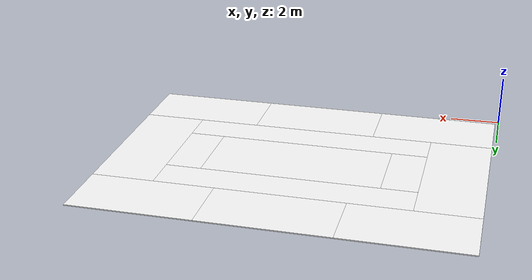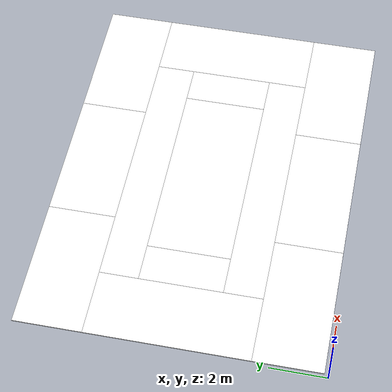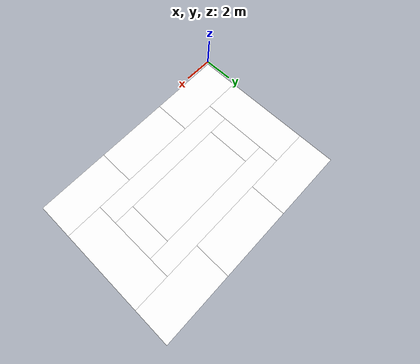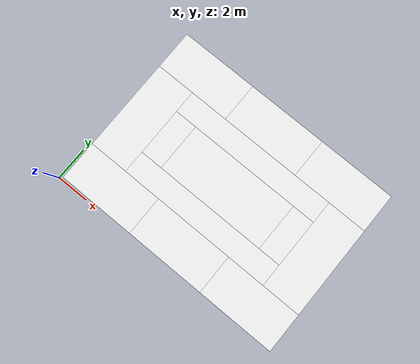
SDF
<sdf version="1.10">
 <world name="hexapod_facility">
  <model name="ground">
   <static>true</static>
   <link name="plane">
    <visual name="vis">
     <geometry><plane><normal>0 0 1</normal><size>60 60</size></plane></geometry>
     <material><diffuse>0.55 0.56 0.58 1</diffuse></material>
    </visual>
   </link>
  </model>
  <model name="floors">
   <static>true</static>
   <link name="slabs">
    <collision name="floor_ring_0_col">
     <pose>7.500 3.300 -0.02 0 0 0</pose>
     <geometry><box><size>9.800 1.400 0.04</size></box></geometry>
     <surface><friction><ode><mu>1.0</mu><mu2>1.0</mu2></ode></friction></surface>
    </collision>
    <visual name="floor_ring_0_vis">
     <pose>7.500 3.300 -0.02 0 0 0</pose>
     <geometry><box><size>9.800 1.400 0.04</size></box></geometry>
     <material>
      <diffuse>1 1 1 1</diffuse>
      <specular>0.15 0.15 0.15 1</specular>
      <pbr>
       <metal>
        <albedo_map>model://slam_assets/materials/textures/floor_lane.png</albedo_map>
        <roughness>0.85</roughness>
        <metalness>0.0</metalness>
       </metal>
      </pbr>
     </material>
    </visual>
    <collision name="floor_ring_1_col">
     <pose>7.500 7.700 -0.02 0 0 0</pose>
     <geometry><box><size>9.800 1.400 0.04</size></box></geometry>
     <surface><friction><ode><mu>1.0</mu><mu2>1.0</mu2></ode></friction></surface>
    </collision>
    <visual name="floor_ring_1_vis">
     <pose>7.500 7.700 -0.02 0 0 0</pose>
     <geometry><box><size>9.800 1.400 0.04</size></box></geometry>
     <material>
      <diffuse>1 1 1 1</diffuse>
      <specular>0.15 0.15 0.15 1</specular>
      <pbr>
       <metal>
        <albedo_map>model://slam_assets/materials/textures/floor_lane.png</albedo_map>
        <roughness>0.85</roughness>
        <metalness>0.0</metalness>
       </metal>
      </pbr>
     </material>
    </visual>
    <collision name="floor_ring_2_col">
     <pose>3.300 5.500 -0.02 0 0 0</pose>
     <geometry><box><size>1.400 3.000 0.04</size></box></geometry>
     <surface><friction><ode><mu>1.0</mu><mu2>1.0</mu2></ode></friction></surface>
    </collision>
    <visual name="floor_ring_2_vis">
     <pose>3.300 5.500 -0.02 0 0 0</pose>
     <geometry><box><size>1.400 3.000 0.04</size></box></geometry>
     <material>
      <diffuse>1 1 1 1</diffuse>
      <specular>0.15 0.15 0.15 1</specular>
      <pbr>
       <metal>
        <albedo_map>model://slam_assets/materials/textures/floor_lane.png</albedo_map>
        <roughness>0.85</roughness>
        <metalness>0.0</metalness>
       </metal>
      </pbr>
     </material>
    </visual>
    <collision name="floor_ring_3_col">
     <pose>11.700 5.500 -0.02 0 0 0</pose>
     <geometry><box><size>1.400 3.000 0.04</size></box></geometry>
     <surface><friction><ode><mu>1.0</mu><mu2>1.0</mu2></ode></friction></surface>
    </collision>
    <visual name="floor_ring_3_vis">
     <pose>11.700 5.500 -0.02 0 0 0</pose>
     <geometry><box><size>1.400 3.000 0.04</size></box></geometry>
     <material>
      <diffuse>1 1 1 1</diffuse>
      <specular>0.15 0.15 0.15 1</specular>
      <pbr>
       <metal>
        <albedo_map>model://slam_assets/materials/textures/floor_lane.png</albedo_map>
        <roughness>0.85</roughness>
        <metalness>0.0</metalness>
       </metal>
      </pbr>
     </material>
    </visual>
    <collision name="floor_core_4_col">
     <pose>7.500 5.500 -0.02 0 0 0</pose>
     <geometry><box><size>7.000 3.000 0.04</size></box></geometry>
     <surface><friction><ode><mu>1.0</mu><mu2>1.0</mu2></ode></friction></surface>
    </collision>
    <visual name="floor_core_4_vis">
     <pose>7.500 5.500 -0.02 0 0 0</pose>
     <geometry><box><size>7.000 3.000 0.04</size></box></geometry>
     <material>
      <diffuse>1 1 1 1</diffuse>
      <specular>0.15 0.15 0.15 1</specular>
      <pbr>
       <metal>
        <albedo_map>model://slam_assets/materials/textures/floor_checkerplate.png</albedo_map>
        <roughness>0.85</roughness>
        <metalness>0.0</metalness>
       </metal>
      </pbr>
     </material>
    </visual>
    <collision name="floor_lab_5_col">
     <pose>2.575 1.375 -0.02 0 0 0</pose>
     <geometry><box><size>4.850 2.450 0.04</size></box></geometry>
     <surface><friction><ode><mu>1.0</mu><mu2>1.0</mu2></ode></friction></surface>
    </collision>
    <visual name="floor_lab_5_vis">
     <pose>2.575 1.375 -0.02 0 0 0</pose>
     <geometry><box><size>4.850 2.450 0.04</size></box></geometry>
     <material>
      <diffuse>1 1 1 1</diffuse>
      <specular>0.15 0.15 0.15 1</specular>
      <pbr>
       <metal>
        <albedo_map>model://slam_assets/materials/textures/floor_esd.png</albedo_map>
        <roughness>0.85</roughness>
        <metalness>0.0</metalness>
       </metal>
      </pbr>
     </material>
    </visual>
    <collision name="floor_loading_6_col">
     <pose>7.500 1.375 -0.02 0 0 0</pose>
     <geometry><box><size>5.000 2.450 0.04</size></box></geometry>
     <surface><friction><ode><mu>1.0</mu><mu2>1.0</mu2></ode></friction></surface>
    </collision>
    <visual name="floor_loading_6_vis">
     <pose>7.500 1.375 -0.02 0 0 0</pose>
     <geometry><box><size>5.000 2.450 0.04</size></box></geometry>
     <material>
      <diffuse>1 1 1 1</diffuse>
      <specular>0.15 0.15 0.15 1</specular>
      <pbr>
       <metal>
        <albedo_map>model://slam_assets/materials/textures/floor_hazard.png</albedo_map>
        <roughness>0.85</roughness>
        <metalness>0.0</metalness>
       </metal>
      </pbr>
     </material>
    </visual>
    <collision name="floor_testing_7_col">
     <pose>12.425 1.375 -0.02 0 0 0</pose>
     <geometry><box><size>4.850 2.450 0.04</size></box></geometry>
     <surface><friction><ode><mu>1.0</mu><mu2>1.0</mu2></ode></friction></surface>
    </collision>
    <visual name="floor_testing_7_vis">
     <pose>12.425 1.375 -0.02 0 0 0</pose>
     <geometry><box><size>4.850 2.450 0.04</size></box></geometry>
     <material>
      <diffuse>1 1 1 1</diffuse>
      <specular>0.15 0.15 0.15 1</specular>
      <pbr>
       <metal>
        <albedo_map>model://slam_assets/materials/textures/floor_epoxy_green.png</albedo_map>
        <roughness>0.85</roughness>
        <metalness>0.0</metalness>
       </metal>
      </pbr>
     </material>
    </visual>
    <collision name="floor_storage_8_col">
     <pose>2.575 9.625 -0.02 0 0 0</pose>
     <geometry><box><size>4.850 2.450 0.04</size></box></geometry>
     <surface><friction><ode><mu>1.0</mu><mu2>1.0</mu2></ode></friction></surface>
    </collision>
    <visual name="floor_storage_8_vis">
     <pose>2.575 9.625 -0.02 0 0 0</pose>
     <geometry><box><size>4.850 2.450 0.04</size></box></geometry>
     <material>
      <diffuse>1 1 1 1</diffuse>
      <specular>0.15 0.15 0.15 1</specular>
      <pbr>
       <metal>
        <albedo_map>model://slam_assets/materials/textures/floor_concrete.png</albedo_map>
        <roughness>0.85</roughness>
        <metalness>0.0</metalness>
       </metal>
      </pbr>
     </material>
    </visual>
    <collision name="floor_workshop_9_col">
     <pose>7.500 9.625 -0.02 0 0 0</pose>
     <geometry><box><size>5.000 2.450 0.04</size></box></geometry>
     <surface><friction><ode><mu>1.0</mu><mu2>1.0</mu2></ode></friction></surface>
    </collision>
    <visual name="floor_workshop_9_vis">
     <pose>7.500 9.625 -0.02 0 0 0</pose>
     <geometry><box><size>5.000 2.450 0.04</size></box></geometry>
     <material>
      <diffuse>1 1 1 1</diffuse>
      <specular>0.15 0.15 0.15 1</specular>
      <pbr>
       <metal>
        <albedo_map>model://slam_assets/materials/textures/floor_concrete_oil.png</albedo_map>
        <roughness>0.85</roughness>
        <metalness>0.0</metalness>
       </metal>
      </pbr>
     </material>
    </visual>
    <collision name="floor_maintenance_10_col">
     <pose>12.425 9.625 -0.02 0 0 0</pose>
     <geometry><box><size>4.850 2.450 0.04</size></box></geometry>
     <surface><friction><ode><mu>1.0</mu><mu2>1.0</mu2></ode></friction></surface>
    </collision>
    <visual name="floor_maintenance_10_vis">
     <pose>12.425 9.625 -0.02 0 0 0</pose>
     <geometry><box><size>4.850 2.450 0.04</size></box></geometry>
     <material>
      <diffuse>1 1 1 1</diffuse>
      <specular>0.15 0.15 0.15 1</specular>
      <pbr>
       <metal>
        <albedo_map>model://slam_assets/materials/textures/floor_steel_plate.png</albedo_map>
        <roughness>0.85</roughness>
        <metalness>0.0</metalness>
       </metal>
      </pbr>
     </material>
    </visual>
    <collision name="floor_parts_11_col">
     <pose>1.375 5.500 -0.02 0 0 0</pose>
     <geometry><box><size>2.450 5.800 0.04</size></box></geometry>
     <surface><friction><ode><mu>1.0</mu><mu2>1.0</mu2></ode></friction></surface>
    </collision>
    <visual name="floor_parts_11_vis">
     <pose>1.375 5.500 -0.02 0 0 0</pose>
     <geometry><box><size>2.450 5.800 0.04</size></box></geometry>
     <material>
      <diffuse>1 1 1 1</diffuse>
      <specular>0.15 0.15 0.15 1</specular>
      <pbr>
       <metal>
        <albedo_map>model://slam_assets/materials/textures/floor_tile_grey.png</albedo_map>
        <roughness>0.85</roughness>
        <metalness>0.0</metalness>
       </metal>
      </pbr>
     </material>
    </visual>
    <collision name="floor_equipment_12_col">
     <pose>13.625 5.500 -0.02 0 0 0</pose>
     <geometry><box><size>2.450 5.800 0.04</size></box></geometry>
     <surface><friction><ode><mu>1.0</mu><mu2>1.0</mu2></ode></friction></surface>
    </collision>
    <visual name="floor_equipment_12_vis">
     <pose>13.625 5.500 -0.02 0 0 0</pose>
     <geometry><box><size>2.450 5.800 0.04</size></box></geometry>
     <material>
      <diffuse>1 1 1 1</diffuse>
      <specular>0.15 0.15 0.15 1</specular>
      <pbr>
       <metal>
        <albedo_map>model://slam_assets/materials/textures/floor_concrete.png</albedo_map>
        <roughness>0.85</roughness>
        <metalness>0.0</metalness>
       </metal>
      </pbr>
     </material>
    </visual>
   </link>
  </model>
 </world>
</sdf>
